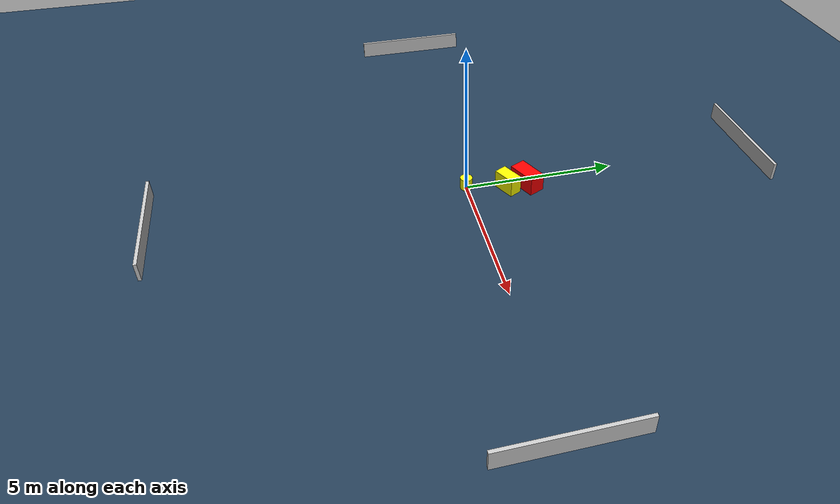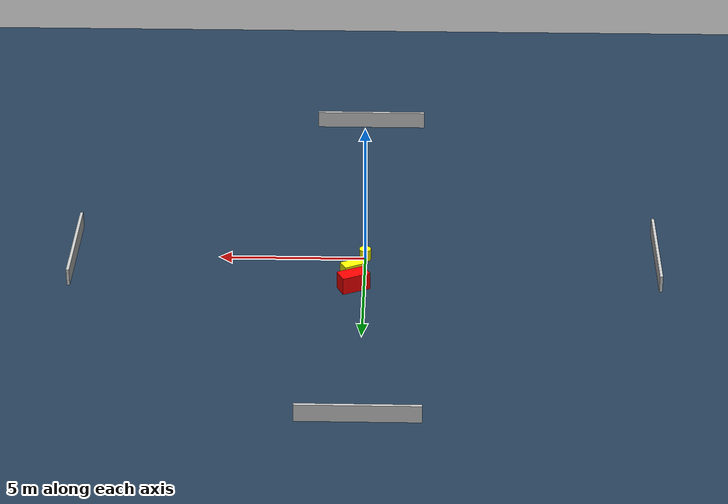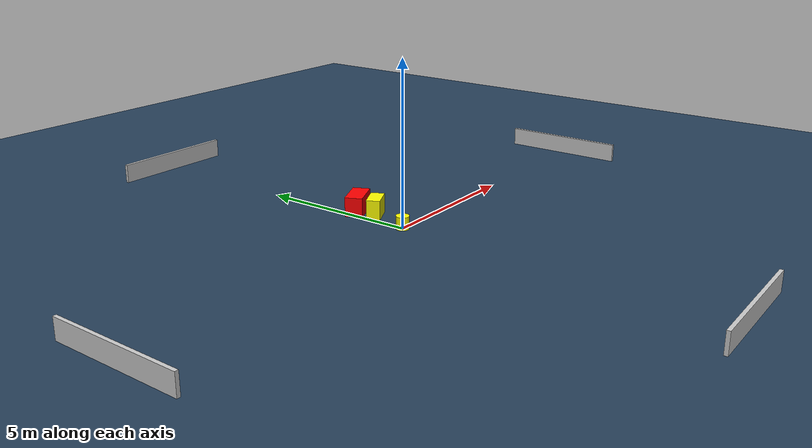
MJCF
<?xml version="1.0" ?>
<mujoco model="generated_environment">
  <option timestep="0.01" integrator="RK4" cone="elliptic"/>
  <default>
    <geom density="1"/>
  </default>
  <asset>
    <texture builtin="gradient" height="3072" name="skybox" rgb1="0.3 0.5 0.7" rgb2="0 0 0" type="skybox" width="512"/>
    <texture builtin="checker" height="300" name="groundplane" rgb1="0.2 0.3 0.4" rgb2="0.1 0.2 0.3" type="2d" width="300"/>
    <material name="groundplane" reflectance="0.2" texrepeat="5 5" texture="groundplane"/>
  </asset>
  <worldbody>
    <light dir="0 0 -1" directional="true" pos="0 0 1.5"/>
    <geom condim="3" friction="0.5 0.005 0.001" material="groundplane" name="floor" pos="0 0 0" size="0 0 0.05" type="plane"/>
    <body name="walls">
      <geom name="wall_1" condim="4" pos="-10.0 0.0 0.3" rgba="0.800000011920929 0.800000011920929 0.800000011920929 1.0" size="0.05 2.0 0.3" type="box"/>
      <geom name="wall_2" condim="4" pos="10.0 0.0 0.3" rgba="0.800000011920929 0.800000011920929 0.800000011920929 1.0" size="0.05 2.0 0.3" type="box"/>
      <geom name="wall_3" condim="4" pos="0.0 -10.0 0.3" rgba="0.800000011920929 0.800000011920929 0.800000011920929 1.0" size="2.0 0.05 0.3" type="box"/>
      <geom name="wall_4" condim="4" pos="0.0 10.0 0.3" rgba="0.800000011920929 0.800000011920929 0.800000011920929 1.0" size="2.0 0.05 0.3" type="box"/>
    </body>
    <body name="robot">
      <joint name="joint_x" type="slide" pos="0 0 0" axis="1 0 0"/>
      <joint name="joint_y" type="slide" pos="0 0 0" axis="0 1 0"/>
      <geom name="robot" type="cylinder" pos="0.0 0.0 0.2" size="0.2 0.2 0.0" mass="5.0" friction="1.0 0.005 0.0001" condim="4" rgba="1.0 1.0 0.0 1.0"/>
    </body>
    <body name="obstacle_1_movable">
      <geom name="obstacle_1_movable" condim="4" pos="0.3876510267510449 1.3035133502494205 0.3" euler="0 0 116.79829214139366" friction="0.0 0.005 0.001" rgba="1.0 1.0 0.0 1.0" size="0.2096380842940767 0.37969943570899567 0.3" type="box" mass="0.1"/>
      <joint type="free"/>
    </body>
    <body name="obstacle_2_static">
      <geom name="obstacle_2_static" condim="4" pos="0.3488494268253343 1.9619403133339564 0.3" euler="0 0 204.70206524018118" friction="0.0 0.005 0.001" rgba="1.0 0.0 0.0 1.0" size="0.5000391324358993 0.2690998332716541 0.3" type="box"/>
    </body>
  </worldbody>
  <actuator>
    <motor name="actuator_x" joint="joint_x" gear="1" ctrlrange="-1 1"/>
    <motor name="actuator_y" joint="joint_y" gear="1" ctrlrange="-1 1"/>
  </actuator>
</mujoco>
